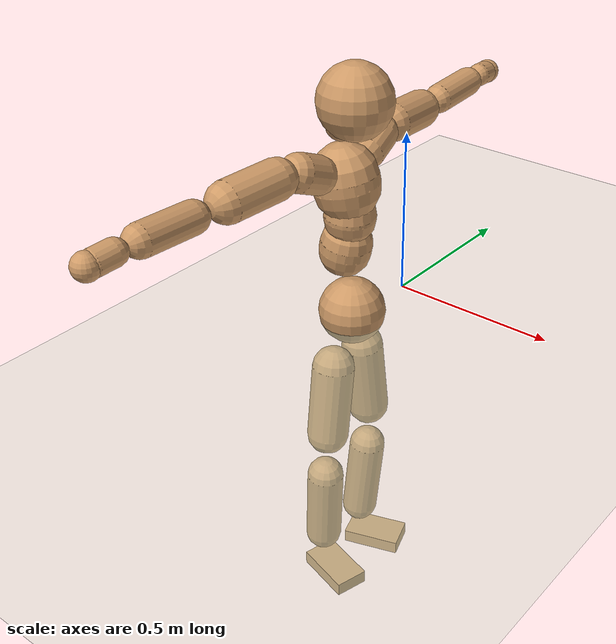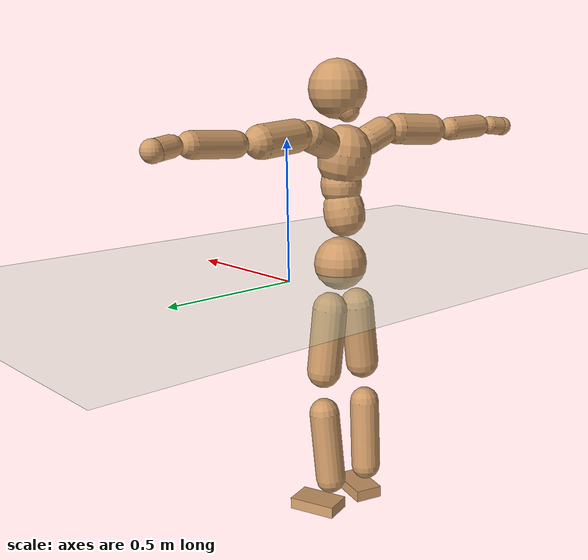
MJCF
<mujoco model="humanoid">
  <compiler coordinate="local"/>
  <default>
    <joint damping="0.0" armature="0.01" stiffness="0.0" limited="true"/>
    <geom conaffinity="1" condim="3" contype="7" margin="0.001" rgba="0.8 0.6 .4 1"/>
  </default>
  <asset>
    <texture type="skybox" builtin="gradient" rgb1=".4 .5 .6" rgb2="0 0 0" width="100" height="100"/>
    <texture builtin="flat" height="1278" mark="cross" markrgb="1 1 1" name="texgeom" random="0.01" rgb1="0.8 0.6 0.4" rgb2="0.8 0.6 0.4" type="cube" width="127"/>
    <texture builtin="checker" height="100" name="texplane" rgb1="0 0 0" rgb2="0.8 0.8 0.8" type="2d" width="100"/>
    <material name="MatPlane" reflectance="0.5" shininess="1" specular="1" texrepeat="60 60" texture="texplane"/>
    <material name="geom" texture="texgeom" texuniform="true"/>
  </asset>
  <worldbody>
    <light cutoff="100" diffuse="1 1 1" dir="-0 0 -1.3" directional="true" exponent="1" pos="0 0 1.3" specular=".1 .1 .1"/>
    <geom conaffinity="1" condim="3" name="floor" pos="0 0 0" rgba="0.8 0.9 0.8 1" size="100 100 .2" type="plane" material="MatPlane"/>
    <body name="Pelvis" pos="-0.0029 -0.2455 0.0315">
      <freejoint name="Pelvis"/>
      <geom type="sphere" contype="1" conaffinity="1" density="500" size="0.0988" pos="0.0000 0.0000 0.0000" name="Pelvis"/>
      <body name="L_Hip" pos="-0.0176 0.0601 -0.0835">
        <joint name="L_Hip_x" type="hinge" pos="0 0 0" axis="1 0 0" stiffness="800" damping="80" armature="0.02" range="-180.0000 180.0000"/>
        <joint name="L_Hip_y" type="hinge" pos="0 0 0" axis="0 1 0" stiffness="800" damping="80" armature="0.02" range="-180.0000 180.0000"/>
        <joint name="L_Hip_z" type="hinge" pos="0 0 0" axis="0 0 1" stiffness="800" damping="80" armature="0.02" range="-180.0000 180.0000"/>
        <geom type="capsule" contype="1" conaffinity="1" density="500" fromto="0.0018 0.0090 -0.0788 0.0072 0.0358 -0.3150" size="0.0641" name="L_Hip"/>
        <body name="L_Knee" pos="0.009 0.0448 -0.3938">
          <joint name="L_Knee_x" type="hinge" pos="0 0 0" axis="1 0 0" stiffness="800" damping="80" armature="0.02" range="-180.0000 180.0000"/>
          <joint name="L_Knee_y" type="hinge" pos="0 0 0" axis="0 1 0" stiffness="800" damping="80" armature="0.02" range="-180.0000 180.0000"/>
          <joint name="L_Knee_z" type="hinge" pos="0 0 0" axis="0 0 1" stiffness="800" damping="80" armature="0.02" range="-180.0000 180.0000"/>
          <geom type="capsule" contype="1" conaffinity="1" density="500" fromto="-0.0076 -0.0031 -0.0879 -0.0304 -0.0123 -0.3516" size="0.0568" name="L_Knee"/>
          <body name="L_Ankle" pos="-0.038 -0.0153 -0.4396">
            <joint name="L_Ankle_x" type="hinge" pos="0 0 0" axis="1 0 0" stiffness="800" damping="80" armature="0.02" range="-180.0000 180.0000"/>
            <joint name="L_Ankle_y" type="hinge" pos="0 0 0" axis="0 1 0" stiffness="800" damping="80" armature="0.02" range="-180.0000 180.0000"/>
            <joint name="L_Ankle_z" type="hinge" pos="0 0 0" axis="0 0 1" stiffness="800" damping="80" armature="0.02" range="-180.0000 180.0000"/>
            <geom type="box" contype="1" conaffinity="1" density="500" pos="0.0626 0.0211 -0.0311" size="0.0919 0.0535 0.0219" quat="0.9868 0.0000 0.0000 0.1619" name="L_Ankle"/>
            <body name="L_Toe" pos="0.1252 0.0422 -0.0621">
              <joint name="L_Toe_x" type="hinge" pos="0 0 0" axis="1 0 0" stiffness="500" damping="50" armature="0.02" range="-180.0000 180.0000"/>
              <joint name="L_Toe_y" type="hinge" pos="0 0 0" axis="0 1 0" stiffness="500" damping="50" armature="0.02" range="-180.0000 180.0000"/>
              <joint name="L_Toe_z" type="hinge" pos="0 0 0" axis="0 0 1" stiffness="500" damping="50" armature="0.02" range="-180.0000 180.0000"/>
              <geom type="box" contype="1" conaffinity="1" density="500" pos="0.0000 0.0000 0.0302" size="0.0011 0.0026 0.0011" quat="0.9860 0.0000 0.0000 0.1665" name="L_Toe"/>
            </body>
          </body>
        </body>
      </body>
      <body name="R_Hip" pos="-0.0136 -0.0615 -0.0916">
        <joint name="R_Hip_x" type="hinge" pos="0 0 0" axis="1 0 0" stiffness="800" damping="80" armature="0.02" range="-180.0000 180.0000"/>
        <joint name="R_Hip_y" type="hinge" pos="0 0 0" axis="0 1 0" stiffness="800" damping="80" armature="0.02" range="-180.0000 180.0000"/>
        <joint name="R_Hip_z" type="hinge" pos="0 0 0" axis="0 0 1" stiffness="800" damping="80" armature="0.02" range="-180.0000 180.0000"/>
        <geom type="capsule" contype="1" conaffinity="1" density="500" fromto="-0.0009 -0.0088 -0.0783 -0.0038 -0.0353 -0.3131" size="0.0635" name="R_Hip"/>
        <body name="R_Knee" pos="-0.0047 -0.0442 -0.3913">
          <joint name="R_Knee_x" type="hinge" pos="0 0 0" axis="1 0 0" stiffness="800" damping="80" armature="0.02" range="-180.0000 180.0000"/>
          <joint name="R_Knee_y" type="hinge" pos="0 0 0" axis="0 1 0" stiffness="800" damping="80" armature="0.02" range="-180.0000 180.0000"/>
          <joint name="R_Knee_z" type="hinge" pos="0 0 0" axis="0 0 1" stiffness="800" damping="80" armature="0.02" range="-180.0000 180.0000"/>
          <geom type="capsule" contype="1" conaffinity="1" density="500" fromto="-0.0071 0.0039 -0.0865 -0.0283 0.0156 -0.3459" size="0.0568" name="R_Knee"/>
          <body name="R_Ankle" pos="-0.0354 0.0196 -0.4324">
            <joint name="R_Ankle_x" type="hinge" pos="0 0 0" axis="1 0 0" stiffness="800" damping="80" armature="0.02" range="-180.0000 180.0000"/>
            <joint name="R_Ankle_y" type="hinge" pos="0 0 0" axis="0 1 0" stiffness="800" damping="80" armature="0.02" range="-180.0000 180.0000"/>
            <joint name="R_Ankle_z" type="hinge" pos="0 0 0" axis="0 0 1" stiffness="800" damping="80" armature="0.02" range="-180.0000 180.0000"/>
            <geom type="box" contype="1" conaffinity="1" density="500" pos="0.0669 -0.0186 -0.0316" size="0.0933 0.0528 0.0221" quat="0.9908 0.0000 0.0000 -0.1350" name="R_Ankle"/>
            <body name="R_Toe" pos="0.1338 -0.0372 -0.0632">
              <joint name="R_Toe_x" type="hinge" pos="0 0 0" axis="1 0 0" stiffness="500" damping="50" armature="0.02" range="-180.0000 180.0000"/>
              <joint name="R_Toe_y" type="hinge" pos="0 0 0" axis="0 1 0" stiffness="500" damping="50" armature="0.02" range="-180.0000 180.0000"/>
              <joint name="R_Toe_z" type="hinge" pos="0 0 0" axis="0 0 1" stiffness="500" damping="50" armature="0.02" range="-180.0000 180.0000"/>
              <geom type="box" contype="1" conaffinity="1" density="500" pos="0.0000 0.0000 0.0314" size="0.0011 0.0026 0.0011" quat="0.9920 0.0000 0.0000 -0.1263" name="R_Toe"/>
            </body>
          </body>
        </body>
      </body>
      <body name="Torso" pos="-0.0414 0.0045 0.1261">
        <joint name="Torso_x" type="hinge" pos="0 0 0" axis="1 0 0" stiffness="1000" damping="100" armature="0.02" range="-180.0000 180.0000"/>
        <joint name="Torso_y" type="hinge" pos="0 0 0" axis="0 1 0" stiffness="1000" damping="100" armature="0.02" range="-180.0000 180.0000"/>
        <joint name="Torso_z" type="hinge" pos="0 0 0" axis="0 0 1" stiffness="1000" damping="100" armature="0.02" range="-180.0000 180.0000"/>
        <geom type="capsule" contype="1" conaffinity="1" density="500" fromto="0.0157 0.0027 0.0843 0.0105 0.0018 0.0562" size="0.075609" name="Torso"/>
        <body name="Spine" pos="0.0262 0.0046 0.1406">
          <joint name="Spine_x" type="hinge" pos="0 0 0" axis="1 0 0" stiffness="1000" damping="100" armature="0.02" range="-180.0000 180.0000"/>
          <joint name="Spine_y" type="hinge" pos="0 0 0" axis="0 1 0" stiffness="1000" damping="100" armature="0.02" range="-180.0000 180.0000"/>
          <joint name="Spine_z" type="hinge" pos="0 0 0" axis="0 0 1" stiffness="1000" damping="100" armature="0.02" range="-180.0000 180.0000"/>
          <geom type="capsule" contype="1" conaffinity="1" density="500" fromto="0.0017 -0.0013 0.0345 0.0011 -0.0009 0.0230" size="0.074772" name="Spine"/>
          <body name="Chest" pos="0.0028 -0.0022 0.0575">
            <joint name="Chest_x" type="hinge" pos="0 0 0" axis="1 0 0" stiffness="1000" damping="100" armature="0.02" range="-180.0000 180.0000"/>
            <joint name="Chest_y" type="hinge" pos="0 0 0" axis="0 1 0" stiffness="1000" damping="100" armature="0.02" range="-180.0000 180.0000"/>
            <joint name="Chest_z" type="hinge" pos="0 0 0" axis="0 0 1" stiffness="1000" damping="100" armature="0.02" range="-180.0000 180.0000"/>
            <geom type="capsule" contype="1" conaffinity="1" density="500" fromto="-0.0151 -0.0048 0.0900 -0.0101 -0.0032 0.0600" size="0.09672" name="Chest"/>
            <body name="Neck" pos="-0.0331 -0.0133 0.2179">
              <joint name="Neck_x" type="hinge" pos="0 0 0" axis="1 0 0" stiffness="500" damping="50" armature="0.02" range="-180.0000 180.0000"/>
              <joint name="Neck_y" type="hinge" pos="0 0 0" axis="0 1 0" stiffness="500" damping="50" armature="0.02" range="-180.0000 180.0000"/>
              <joint name="Neck_z" type="hinge" pos="0 0 0" axis="0 0 1" stiffness="500" damping="50" armature="0.02" range="-180.0000 180.0000"/>
              <geom type="capsule" contype="1" conaffinity="1" density="500" fromto="0.0103 0.0021 0.0182 0.0414 0.0085 0.0729" size="0.042966" name="Neck"/>
              <body name="Head" pos="0.0517 0.0107 0.0912">
                <joint name="Head_x" type="hinge" pos="0 0 0" axis="1 0 0" stiffness="500" damping="50" armature="0.02" range="-180.0000 180.0000"/>
                <joint name="Head_y" type="hinge" pos="0 0 0" axis="0 1 0" stiffness="500" damping="50" armature="0.02" range="-180.0000 180.0000"/>
                <joint name="Head_z" type="hinge" pos="0 0 0" axis="0 0 1" stiffness="500" damping="50" armature="0.02" range="-180.0000 180.0000"/>
                <geom type="sphere" contype="1" conaffinity="1" density="500" size="0.1063" pos="0.0000 0.0000 0.0000" name="Head"/>
              </body>
            </body>
            <body name="L_Thorax" pos="-0.0184 0.073 0.1172">
              <joint name="L_Thorax_x" type="hinge" pos="0 0 0" axis="1 0 0" stiffness="500" damping="50" armature="0.02" range="-180.0000 180.0000"/>
              <joint name="L_Thorax_y" type="hinge" pos="0 0 0" axis="0 1 0" stiffness="500" damping="50" armature="0.02" range="-180.0000 180.0000"/>
              <joint name="L_Thorax_z" type="hinge" pos="0 0 0" axis="0 0 1" stiffness="500" damping="50" armature="0.02" range="-180.0000 180.0000"/>
              <geom type="capsule" contype="1" conaffinity="1" density="500" fromto="-0.0039 0.0250 0.0093 -0.0154 0.1001 0.0373" size="0.0547" name="L_Thorax"/>
              <body name="L_Shoulder" pos="-0.0193 0.1251 0.0466">
                <joint name="L_Shoulder_x" type="hinge" pos="0 0 0" axis="1 0 0" stiffness="500" damping="50" armature="0.02" range="-720.0000 720.0000"/>
                <joint name="L_Shoulder_y" type="hinge" pos="0 0 0" axis="0 1 0" stiffness="500" damping="50" armature="0.02" range="-720.0000 720.0000"/>
                <joint name="L_Shoulder_z" type="hinge" pos="0 0 0" axis="0 0 1" stiffness="500" damping="50" armature="0.02" range="-720.0000 720.0000"/>
                <geom type="capsule" contype="1" conaffinity="1" density="500" fromto="-0.0050 0.0522 -0.0034 -0.0201 0.2086 -0.0136" size="0.0573" name="L_Shoulder"/>
                <body name="L_Elbow" pos="-0.0252 0.2608 -0.017">
                  <joint name="L_Elbow_x" type="hinge" pos="0 0 0" axis="1 0 0" stiffness="500" damping="50" armature="0.02" range="-720.0000 720.0000"/>
                  <joint name="L_Elbow_y" type="hinge" pos="0 0 0" axis="0 1 0" stiffness="500" damping="50" armature="0.02" range="-720.0000 720.0000"/>
                  <joint name="L_Elbow_z" type="hinge" pos="0 0 0" axis="0 0 1" stiffness="500" damping="50" armature="0.02" range="-720.0000 720.0000"/>
                  <geom type="capsule" contype="1" conaffinity="1" density="500" fromto="-0.0013 0.0549 0.0028 -0.0050 0.2195 0.0113" size="0.044" name="L_Elbow"/>
                  <body name="L_Wrist" pos="-0.0063 0.2743 0.0142">
                    <joint name="L_Wrist_x" type="hinge" pos="0 0 0" axis="1 0 0" stiffness="300" damping="30" armature="0.02" range="-180.0000 180.0000"/>
                    <joint name="L_Wrist_y" type="hinge" pos="0 0 0" axis="0 1 0" stiffness="300" damping="30" armature="0.02" range="-180.0000 180.0000"/>
                    <joint name="L_Wrist_z" type="hinge" pos="0 0 0" axis="0 0 1" stiffness="300" damping="30" armature="0.02" range="-180.0000 180.0000"/>
                    <geom type="capsule" contype="1" conaffinity="1" density="500" fromto="-0.0032 0.0180 -0.0022 -0.0130 0.0720 -0.0089" size="0.0354" name="L_Wrist"/>
                    <body name="L_Hand" pos="-0.0162 0.09 -0.0111">
                      <joint name="L_Hand_x" type="hinge" pos="0 0 0" axis="1 0 0" stiffness="300" damping="30" armature="0.02" range="-180.0000 180.0000"/>
                      <joint name="L_Hand_y" type="hinge" pos="0 0 0" axis="0 1 0" stiffness="300" damping="30" armature="0.02" range="-180.0000 180.0000"/>
                      <joint name="L_Hand_z" type="hinge" pos="0 0 0" axis="0 0 1" stiffness="300" damping="30" armature="0.02" range="-180.0000 180.0000"/>
                      <geom type="sphere" contype="1" conaffinity="1" density="500" size="0.0369" pos="0.0000 0.0000 0.0000" name="L_Hand"/>
                    </body>
                  </body>
                </body>
              </body>
            </body>
            <body name="R_Thorax" pos="-0.0241 -0.0836 0.1149">
              <joint name="R_Thorax_x" type="hinge" pos="0 0 0" axis="1 0 0" stiffness="500" damping="50" armature="0.02" range="-180.0000 180.0000"/>
              <joint name="R_Thorax_y" type="hinge" pos="0 0 0" axis="0 1 0" stiffness="500" damping="50" armature="0.02" range="-180.0000 180.0000"/>
              <joint name="R_Thorax_z" type="hinge" pos="0 0 0" axis="0 0 1" stiffness="500" damping="50" armature="0.02" range="-180.0000 180.0000"/>
              <geom type="capsule" contype="1" conaffinity="1" density="500" fromto="-0.0017 -0.0230 0.0097 -0.0069 -0.0921 0.0387" size="0.0547" name="R_Thorax"/>
              <body name="R_Shoulder" pos="-0.0087 -0.1152 0.0484">
                <joint name="R_Shoulder_x" type="hinge" pos="0 0 0" axis="1 0 0" stiffness="500" damping="50" armature="0.02" range="-720.0000 720.0000"/>
                <joint name="R_Shoulder_y" type="hinge" pos="0 0 0" axis="0 1 0" stiffness="500" damping="50" armature="0.02" range="-720.0000 720.0000"/>
                <joint name="R_Shoulder_z" type="hinge" pos="0 0 0" axis="0 0 1" stiffness="500" damping="50" armature="0.02" range="-720.0000 720.0000"/>
                <geom type="capsule" contype="1" conaffinity="1" density="500" fromto="-0.0068 -0.0533 -0.0032 -0.0272 -0.2131 -0.0127" size="0.0578" name="R_Shoulder"/>
                <body name="R_Elbow" pos="-0.034 -0.2663 -0.0159">
                  <joint name="R_Elbow_x" type="hinge" pos="0 0 0" axis="1 0 0" stiffness="500" damping="50" armature="0.02" range="-720.0000 720.0000"/>
                  <joint name="R_Elbow_y" type="hinge" pos="0 0 0" axis="0 1 0" stiffness="500" damping="50" armature="0.02" range="-720.0000 720.0000"/>
                  <joint name="R_Elbow_z" type="hinge" pos="0 0 0" axis="0 0 1" stiffness="500" damping="50" armature="0.02" range="-720.0000 720.0000"/>
                  <geom type="capsule" contype="1" conaffinity="1" density="500" fromto="-0.0011 -0.0553 0.0013 -0.0043 -0.2212 0.0054" size="0.0444" name="R_Elbow"/>
                  <body name="R_Wrist" pos="-0.0054 -0.2765 0.0067">
                    <joint name="R_Wrist_x" type="hinge" pos="0 0 0" axis="1 0 0" stiffness="300" damping="30" armature="0.02" range="-180.0000 180.0000"/>
                    <joint name="R_Wrist_y" type="hinge" pos="0 0 0" axis="0 1 0" stiffness="300" damping="30" armature="0.02" range="-180.0000 180.0000"/>
                    <joint name="R_Wrist_z" type="hinge" pos="0 0 0" axis="0 0 1" stiffness="300" damping="30" armature="0.02" range="-180.0000 180.0000"/>
                    <geom type="capsule" contype="1" conaffinity="1" density="500" fromto="-0.0021 -0.0183 -0.0018 -0.0084 -0.0733 -0.0072" size="0.0358" name="R_Wrist"/>
                    <body name="R_Hand" pos="-0.0105 -0.0916 -0.009">
                      <joint name="R_Hand_x" type="hinge" pos="0 0 0" axis="1 0 0" stiffness="300" damping="30" armature="0.02" range="-180.0000 180.0000"/>
                      <joint name="R_Hand_y" type="hinge" pos="0 0 0" axis="0 1 0" stiffness="300" damping="30" armature="0.02" range="-180.0000 180.0000"/>
                      <joint name="R_Hand_z" type="hinge" pos="0 0 0" axis="0 0 1" stiffness="300" damping="30" armature="0.02" range="-180.0000 180.0000"/>
                      <geom type="sphere" contype="1" conaffinity="1" density="500" size="0.0372" pos="0.0000 0.0000 0.0000" name="R_Hand"/>
                    </body>
                  </body>
                </body>
              </body>
            </body>
          </body>
        </body>
      </body>
    </body>
  </worldbody>
  <actuator>
    <motor name="L_Hip_x" joint="L_Hip_x" gear="500"/>
    <motor name="L_Hip_y" joint="L_Hip_y" gear="500"/>
    <motor name="L_Hip_z" joint="L_Hip_z" gear="500"/>
    <motor name="L_Knee_x" joint="L_Knee_x" gear="500"/>
    <motor name="L_Knee_y" joint="L_Knee_y" gear="500"/>
    <motor name="L_Knee_z" joint="L_Knee_z" gear="500"/>
    <motor name="L_Ankle_x" joint="L_Ankle_x" gear="500"/>
    <motor name="L_Ankle_y" joint="L_Ankle_y" gear="500"/>
    <motor name="L_Ankle_z" joint="L_Ankle_z" gear="500"/>
    <motor name="L_Toe_x" joint="L_Toe_x" gear="500"/>
    <motor name="L_Toe_y" joint="L_Toe_y" gear="500"/>
    <motor name="L_Toe_z" joint="L_Toe_z" gear="500"/>
    <motor name="R_Hip_x" joint="R_Hip_x" gear="500"/>
    <motor name="R_Hip_y" joint="R_Hip_y" gear="500"/>
    <motor name="R_Hip_z" joint="R_Hip_z" gear="500"/>
    <motor name="R_Knee_x" joint="R_Knee_x" gear="500"/>
    <motor name="R_Knee_y" joint="R_Knee_y" gear="500"/>
    <motor name="R_Knee_z" joint="R_Knee_z" gear="500"/>
    <motor name="R_Ankle_x" joint="R_Ankle_x" gear="500"/>
    <motor name="R_Ankle_y" joint="R_Ankle_y" gear="500"/>
    <motor name="R_Ankle_z" joint="R_Ankle_z" gear="500"/>
    <motor name="R_Toe_x" joint="R_Toe_x" gear="500"/>
    <motor name="R_Toe_y" joint="R_Toe_y" gear="500"/>
    <motor name="R_Toe_z" joint="R_Toe_z" gear="500"/>
    <motor name="Torso_x" joint="Torso_x" gear="500"/>
    <motor name="Torso_y" joint="Torso_y" gear="500"/>
    <motor name="Torso_z" joint="Torso_z" gear="500"/>
    <motor name="Spine_x" joint="Spine_x" gear="500"/>
    <motor name="Spine_y" joint="Spine_y" gear="500"/>
    <motor name="Spine_z" joint="Spine_z" gear="500"/>
    <motor name="Chest_x" joint="Chest_x" gear="500"/>
    <motor name="Chest_y" joint="Chest_y" gear="500"/>
    <motor name="Chest_z" joint="Chest_z" gear="500"/>
    <motor name="Neck_x" joint="Neck_x" gear="500"/>
    <motor name="Neck_y" joint="Neck_y" gear="500"/>
    <motor name="Neck_z" joint="Neck_z" gear="500"/>
    <motor name="Head_x" joint="Head_x" gear="500"/>
    <motor name="Head_y" joint="Head_y" gear="500"/>
    <motor name="Head_z" joint="Head_z" gear="500"/>
    <motor name="L_Thorax_x" joint="L_Thorax_x" gear="500"/>
    <motor name="L_Thorax_y" joint="L_Thorax_y" gear="500"/>
    <motor name="L_Thorax_z" joint="L_Thorax_z" gear="500"/>
    <motor name="L_Shoulder_x" joint="L_Shoulder_x" gear="500"/>
    <motor name="L_Shoulder_y" joint="L_Shoulder_y" gear="500"/>
    <motor name="L_Shoulder_z" joint="L_Shoulder_z" gear="500"/>
    <motor name="L_Elbow_x" joint="L_Elbow_x" gear="500"/>
    <motor name="L_Elbow_y" joint="L_Elbow_y" gear="500"/>
    <motor name="L_Elbow_z" joint="L_Elbow_z" gear="500"/>
    <motor name="L_Wrist_x" joint="L_Wrist_x" gear="500"/>
    <motor name="L_Wrist_y" joint="L_Wrist_y" gear="500"/>
    <motor name="L_Wrist_z" joint="L_Wrist_z" gear="500"/>
    <motor name="L_Hand_x" joint="L_Hand_x" gear="500"/>
    <motor name="L_Hand_y" joint="L_Hand_y" gear="500"/>
    <motor name="L_Hand_z" joint="L_Hand_z" gear="500"/>
    <motor name="R_Thorax_x" joint="R_Thorax_x" gear="500"/>
    <motor name="R_Thorax_y" joint="R_Thorax_y" gear="500"/>
    <motor name="R_Thorax_z" joint="R_Thorax_z" gear="500"/>
    <motor name="R_Shoulder_x" joint="R_Shoulder_x" gear="500"/>
    <motor name="R_Shoulder_y" joint="R_Shoulder_y" gear="500"/>
    <motor name="R_Shoulder_z" joint="R_Shoulder_z" gear="500"/>
    <motor name="R_Elbow_x" joint="R_Elbow_x" gear="500"/>
    <motor name="R_Elbow_y" joint="R_Elbow_y" gear="500"/>
    <motor name="R_Elbow_z" joint="R_Elbow_z" gear="500"/>
    <motor name="R_Wrist_x" joint="R_Wrist_x" gear="500"/>
    <motor name="R_Wrist_y" joint="R_Wrist_y" gear="500"/>
    <motor name="R_Wrist_z" joint="R_Wrist_z" gear="500"/>
    <motor name="R_Hand_x" joint="R_Hand_x" gear="500"/>
    <motor name="R_Hand_y" joint="R_Hand_y" gear="500"/>
    <motor name="R_Hand_z" joint="R_Hand_z" gear="500"/>
  </actuator>
  <contact>
    <exclude body1="Torso" body2="Chest"/>
    <exclude body1="Head" body2="Chest"/>
    <exclude body1="R_Knee" body2="R_Toe"/>
    <exclude body1="R_Knee" body2="L_Ankle"/>
    <exclude body1="R_Knee" body2="L_Toe"/>
    <exclude body1="L_Knee" body2="L_Toe"/>
    <exclude body1="L_Knee" body2="R_Ankle"/>
    <exclude body1="L_Knee" body2="R_Toe"/>
    <exclude body1="L_Shoulder" body2="Chest"/>
    <exclude body1="R_Shoulder" body2="Chest"/>
  </contact>
  <sensor/>
  <size njmax="700" nconmax="700"/>
</mujoco>
